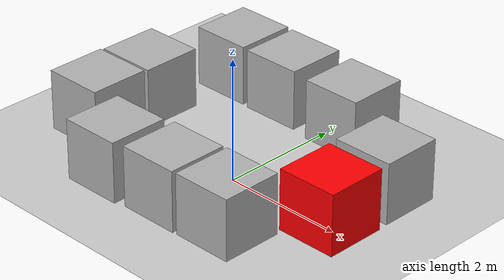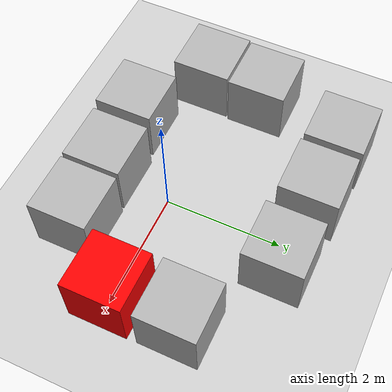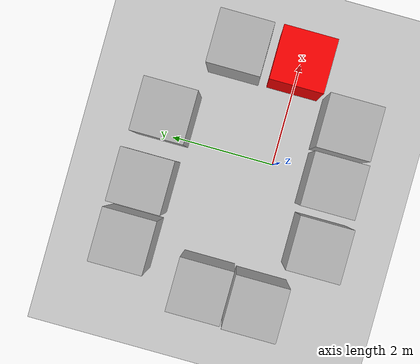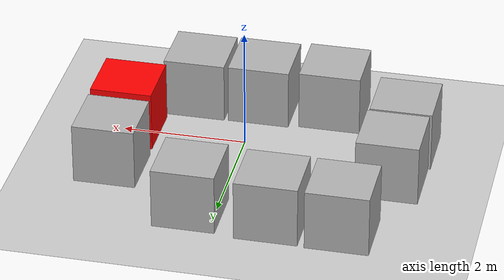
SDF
<sdf version="1.9">
 <world name="SinaiAgri">
  <physics name="1ms" type="ignored">
   <max_step_size>0.001</max_step_size>
   <real_time_factor>1</real_time_factor>
   <real_time_update_rate>1000</real_time_update_rate>
  </physics>
  <plugin name="gz::sim::systems::Physics" filename="ignition-gazebo-physics-system"/>
  <plugin name="gz::sim::systems::UserCommands" filename="ignition-gazebo-user-commands-system"/>
  <plugin name="gz::sim::systems::SceneBroadcaster" filename="ignition-gazebo-scene-broadcaster-system"/>
  <plugin name="gz::sim::systems::Contact" filename="ignition-gazebo-contact-system"/>
  <plugin name="gz::sim::systems::Sensors" filename="ignition-gazebo-sensors-system">
   <render_engine>ogre</render_engine>
  </plugin>
  <gravity>0 0 -9.8</gravity>
  <magnetic_field>6e-06 2.3e-05 -4.2e-05</magnetic_field>
  <atmosphere type="adiabatic"/>
  <scene><ambient>0.4 0.4 0.4 1</ambient><background>0.7 0.7 0.7 1</background><shadows>true</shadows></scene>
  <model name="ground_plane">
   <static>true</static>
   <link name="link">
    <collision name="collision">
     <geometry><plane><normal>0 0 1</normal><size>100 100</size></plane></geometry>
    </collision>
    <visual name="visual">
     <geometry><plane><normal>0 0 1</normal><size>100 100</size></plane></geometry>
     <material>
      <ambient>0.8 0.8 0.8 1</ambient>
      <diffuse>0.8 0.8 0.8 1</diffuse>
      <specular>0.8 0.8 0.8 1</specular>
     </material>
    </visual>
    <inertial>
     <mass>1</mass>
     <inertia><ixx>1</ixx><ixy>0</ixy><ixz>0</ixz><iyy>1</iyy><iyz>0</iyz><izz>1</izz></inertia>
    </inertial>
   </link>
  </model>
  <model name="box">
   <pose>1.91461 0.016905 0.5 0 0 -0</pose>
   <link name="box_link">
    <inertial>
     <inertia><ixx>0.16666</ixx><ixy>0</ixy><ixz>0</ixz><iyy>0.16666</iyy><iyz>0</iyz><izz>0.16666</izz></inertia>
     <mass>1</mass>
    </inertial>
    <collision name="box_collision"><geometry><box><size>1 1 1</size></box></geometry></collision>
    <visual name="box_visual">
     <geometry><box><size>1 1 1</size></box></geometry>
     <material><ambient>1 0 0 1</ambient><diffuse>1 0 0 1</diffuse><specular>0.1 0.1 0.1 1</specular></material>
    </visual>
   </link>
   <static>false</static>
  </model>
  <model name="box_0">
   <pose>0.382823 2.16237 0.5 0 0 -0</pose>
   <link name="box_link">
    <inertial>
     <inertia><ixx>0.16666</ixx><ixy>0</ixy><ixz>0</ixz><iyy>0.16666</iyy><iyz>0</iyz><izz>0.16666</izz></inertia>
     <mass>1</mass>
    </inertial>
    <collision name="box_collision"><geometry><box><size>1 1 1</size></box></geometry></collision>
    <visual name="box_visual">
     <geometry><box><size>1 1 1</size></box></geometry>
     <material>
      <ambient>0.3 0.3 0.3 1</ambient>
      <diffuse>0.7 0.7 0.7 1</diffuse>
      <specular>1 1 1 1</specular>
     </material>
    </visual>
   </link>
   <static>false</static>
  </model>
  <model name="box_1">
   <pose>-2.52606 0.691639 0.5 0 0 -0</pose>
   <link name="box_link">
    <inertial>
     <inertia><ixx>0.16666</ixx><ixy>0</ixy><ixz>0</ixz><iyy>0.16666</iyy><iyz>0</iyz><izz>0.16666</izz></inertia>
     <mass>1</mass>
    </inertial>
    <collision name="box_collision"><geometry><box><size>1 1 1</size></box></geometry></collision>
    <visual name="box_visual">
     <geometry><box><size>1 1 1</size></box></geometry>
     <material>
      <ambient>0.3 0.3 0.3 1</ambient>
      <diffuse>0.7 0.7 0.7 1</diffuse>
      <specular>1 1 1 1</specular>
     </material>
    </visual>
   </link>
   <static>false</static>
  </model>
  <model name="box_2">
   <pose>-2.56077 -0.345689 0.5 0 0 -0</pose>
   <link name="box_link">
    <inertial>
     <inertia><ixx>0.16666</ixx><ixy>0</ixy><ixz>0</ixz><iyy>0.16666</iyy><iyz>0</iyz><izz>0.16666</izz></inertia>
     <mass>1</mass>
    </inertial>
    <collision name="box_collision"><geometry><box><size>1 1 1</size></box></geometry></collision>
    <visual name="box_visual">
     <geometry><box><size>1 1 1</size></box></geometry>
     <material>
      <ambient>0.3 0.3 0.3 1</ambient>
      <diffuse>0.7 0.7 0.7 1</diffuse>
      <specular>1 1 1 1</specular>
     </material>
    </visual>
   </link>
   <static>false</static>
  </model>
  <model name="box_3">
   <pose>-1.25285 -1.16123 0.5 0 0 -0</pose>
   <link name="box_link">
    <inertial>
     <inertia><ixx>0.16666</ixx><ixy>0</ixy><ixz>0</ixz><iyy>0.16666</iyy><iyz>0</iyz><izz>0.16666</izz></inertia>
     <mass>1</mass>
    </inertial>
    <collision name="box_collision"><geometry><box><size>1 1 1</size></box></geometry></collision>
    <visual name="box_visual">
     <geometry><box><size>1 1 1</size></box></geometry>
     <material>
      <ambient>0.3 0.3 0.3 1</ambient>
      <diffuse>0.7 0.7 0.7 1</diffuse>
      <specular>1 1 1 1</specular>
     </material>
    </visual>
   </link>
   <static>false</static>
  </model>
  <model name="box_4">
   <pose>-0.087989 -1.10683 0.5 0 0 -0</pose>
   <link name="box_link">
    <inertial>
     <inertia><ixx>0.16666</ixx><ixy>0</ixy><ixz>0</ixz><iyy>0.16666</iyy><iyz>0</iyz><izz>0.16666</izz></inertia>
     <mass>1</mass>
    </inertial>
    <collision name="box_collision"><geometry><box><size>1 1 1</size></box></geometry></collision>
    <visual name="box_visual">
     <geometry><box><size>1 1 1</size></box></geometry>
     <material>
      <ambient>0.3 0.3 0.3 1</ambient>
      <diffuse>0.7 0.7 0.7 1</diffuse>
      <specular>1 1 1 1</specular>
     </material>
    </visual>
   </link>
   <static>false</static>
  </model>
  <model name="box_5">
   <pose>0.978633 -1.09495 0.5 0 0 -0</pose>
   <link name="box_link">
    <inertial>
     <inertia><ixx>0.16666</ixx><ixy>0</ixy><ixz>0</ixz><iyy>0.16666</iyy><iyz>0</iyz><izz>0.16666</izz></inertia>
     <mass>1</mass>
    </inertial>
    <collision name="box_collision"><geometry><box><size>1 1 1</size></box></geometry></collision>
    <visual name="box_visual">
     <geometry><box><size>1 1 1</size></box></geometry>
     <material>
      <ambient>0.3 0.3 0.3 1</ambient>
      <diffuse>0.7 0.7 0.7 1</diffuse>
      <specular>1 1 1 1</specular>
     </material>
    </visual>
   </link>
   <static>false</static>
  </model>
  <model name="box_6">
   <pose>1.90082 1.17895 0.5 0 0 -0</pose>
   <link name="box_link">
    <inertial>
     <inertia><ixx>0.16666</ixx><ixy>0</ixy><ixz>0</ixz><iyy>0.16666</iyy><iyz>0</iyz><izz>0.16666</izz></inertia>
     <mass>1</mass>
    </inertial>
    <collision name="box_collision"><geometry><box><size>1 1 1</size></box></geometry></collision>
    <visual name="box_visual">
     <geometry><box><size>1 1 1</size></box></geometry>
     <material>
      <ambient>0.3 0.3 0.3 1</ambient>
      <diffuse>0.7 0.7 0.7 1</diffuse>
      <specular>1 1 1 1</specular>
     </material>
    </visual>
   </link>
   <static>false</static>
  </model>
  <model name="box_7">
   <pose>-0.928585 2.22571 0.5 0 0 -0</pose>
   <link name="box_link">
    <inertial>
     <inertia><ixx>0.16666</ixx><ixy>0</ixy><ixz>0</ixz><iyy>0.16666</iyy><iyz>0</iyz><izz>0.16666</izz></inertia>
     <mass>1</mass>
    </inertial>
    <collision name="box_collision"><geometry><box><size>1 1 1</size></box></geometry></collision>
    <visual name="box_visual">
     <geometry><box><size>1 1 1</size></box></geometry>
     <material>
      <ambient>0.3 0.3 0.3 1</ambient>
      <diffuse>0.7 0.7 0.7 1</diffuse>
      <specular>1 1 1 1</specular>
     </material>
    </visual>
   </link>
   <static>false</static>
  </model>
  <model name="box_8">
   <pose>-2.03793 2.24736 0.5 0 0 -0</pose>
   <link name="box_link">
    <inertial>
     <inertia><ixx>0.16666</ixx><ixy>0</ixy><ixz>0</ixz><iyy>0.16666</iyy><iyz>0</iyz><izz>0.16666</izz></inertia>
     <mass>1</mass>
    </inertial>
    <collision name="box_collision"><geometry><box><size>1 1 1</size></box></geometry></collision>
    <visual name="box_visual">
     <geometry><box><size>1 1 1</size></box></geometry>
     <material>
      <ambient>0.3 0.3 0.3 1</ambient>
      <diffuse>0.7 0.7 0.7 1</diffuse>
      <specular>1 1 1 1</specular>
     </material>
    </visual>
   </link>
   <static>false</static>
  </model>
  <light name="sun" type="directional">
   <pose>0 0 10 0 -0 0</pose>
   <intensity>1</intensity>
   <direction>-0.5 0.1 -0.9</direction>
   <diffuse>0.8 0.8 0.8 1</diffuse>
   <specular>0.2 0.2 0.2 1</specular>
   <attenuation>
    <range>1000</range>
    <linear>0.01</linear>
    <constant>0.90000000000000002</constant>
    <quadratic>0.001</quadratic>
   </attenuation>
   <spot><inner_angle>0</inner_angle><outer_angle>0</outer_angle><falloff>0</falloff></spot>
  </light>
 </world>
</sdf>
